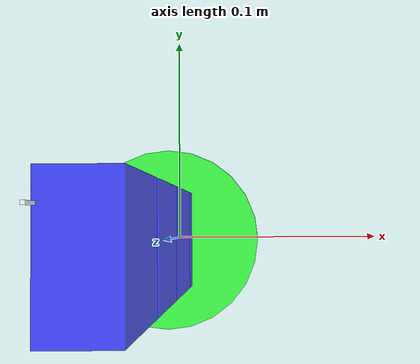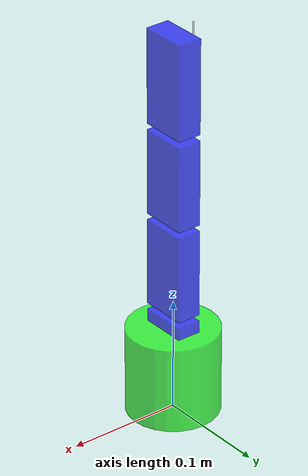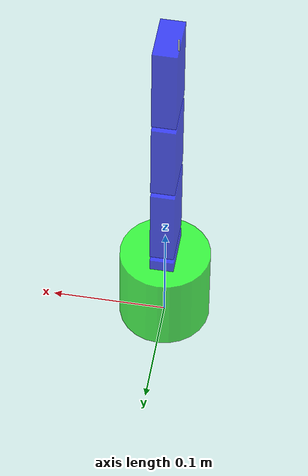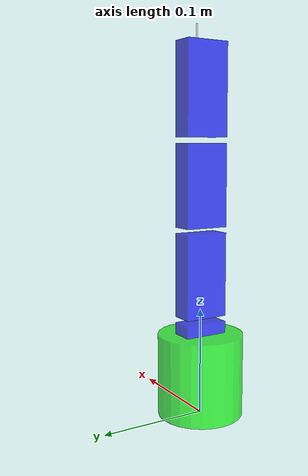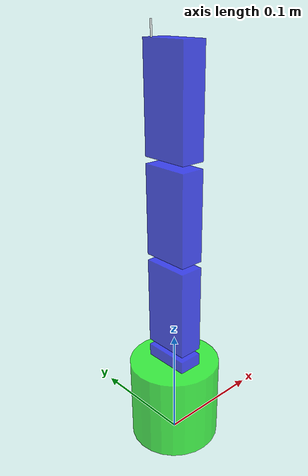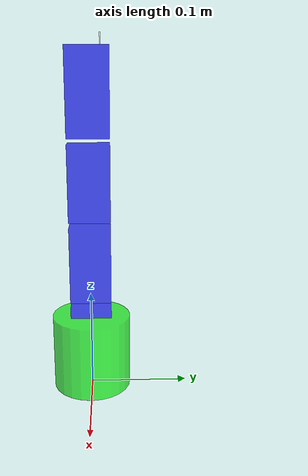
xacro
<?xml version="1.0"?>
<robot xmlns:xacro="http://www.ros.org/wiki/xacro" name="robot">
    <xacro:arg name="initial_positions_file" default="initial_positions.yaml" />

    <!-- Import robot urdf file -->
    <xacro:include filename="$(find arm_description)/description/bot.urdf.xacro" />

    <!-- Import control_xacro -->
    <xacro:include filename="robot.ros2_control.xacro" />

    <xacro:robot_ros2_control name="FakeSystem" initial_positions_file="$(arg initial_positions_file)"/>

</robot>

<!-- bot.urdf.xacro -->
<robot xmlns:xacro="http://www.ros.org/wiki/xacro"  name="robot">

    <xacro:include filename="arm.xacro" />

    <xacro:include filename="gazebo_control.xacro" />

</robot>

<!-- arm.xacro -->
<robot xmlns:xacro="http://www.ros.org/wiki/xacro">

    <xacro:include filename="inertial_macros.xacro"/>

    <material name="white">
        <color rgba="1 1 1 0.7"/>
    </material>

    <material name="orange">
        <color rgba="1 0.5 0 0.7"/>
    </material>

    <material name="blue">
        <color rgba="0 0 1 0.7"/>
    </material>

    <material name="green">
        <color rgba="0 1 0 0.7"/>
    </material>

    <material name="black">
        <color rgba="0 0 0 0.7"/>
    </material>

    <material name="red">
        <color rgba="1 0 0 0.7"/>
    </material>

    <!-- BASE LINK -->

    <link name="base_link">
    </link>

    <!-- base footprint -->

    <joint name="base_footprint_joint" type="fixed">
        <parent link="base_link"/>
        <child link="base_footprint"/>
        <origin xyz="0 0 0" rpy="0 0 0" />
    </joint>

    <link name="base_footprint">
    </link>

    <!-- base cylinder -->
    <joint name="base_cylinder_joint" type="fixed">
        <parent link="base_link"/>
        <child link="base_cylinder"/>
        <origin xyz="0 0 0.104" rpy="0 0 0" />
    </joint>

    <link name="base_cylinder">
        <visual>
            <origin xyz="0 0 -0.0655" rpy="0 0 0" />
            <geometry>
                <cylinder radius="0.040" length="0.077"/>
            </geometry>
            <material name="green"/>
        </visual>

        <collision>
            <origin xyz="0 0 -0.0655" rpy="0 0 0" />
            <geometry>
                <cylinder radius="0.040" length="0.077"/>
            </geometry>
        </collision>
        <xacro:inertial_cylinder mass="50" radius="0.040" length="0.077" >
            <origin xyz="0 0 -0.0655" />
        </xacro:inertial_cylinder>
    </link>

    <gazebo reference="base_cylinder">
        <material>Gazebo/Green</material>
    </gazebo>

    <!-- link 1 -->

    <joint name="link_1_joint" type="revolute">
        <parent link="base_cylinder"/>
        <child link="link_1"/>
        <origin xyz="0 0 0" rpy="0 0 0" />
        <axis xyz="0 0 1"/>
        <limit lower="-${pi/2}" upper="${pi/2}" effort="100" velocity="1"/>
    </joint>

    <link name="link_1">
        <visual>
            <origin xyz="0 0 -0.0215" rpy="0 0 0" />
            <geometry>
                <box size="0.021 0.0415 0.011"/>
            </geometry>
            <material name="blue"/>
        </visual>
        <collision>
            <origin xyz="0 0 -0.0215" rpy="0 0 0" />
            <geometry>
                <box size="0.021 0.0415 0.011"/>
            </geometry>
        </collision>
        <xacro:inertial_box mass="0.05" x="0.021" y="0.0415" z="0.011" >
            <origin xyz="0 0 -0.0215" />
        </xacro:inertial_box>
    </link>

    <gazebo reference="link_1">
        <material>Gazebo/Blue</material>
    </gazebo>

    <!-- link 2 -->

    <joint name="link_2_joint" type="revolute">
        <parent link="link_1"/>
        <child link="link_2"/>
        <origin xyz="0 0 0" rpy="${pi/2} -${pi/2} 0" />
        <axis xyz="0 0 1"/>
        <limit lower="-${pi/2}" upper="${pi/2}" effort="100" velocity="1"/>
    </joint>

    <link name="link_2">
        <visual>
            <origin xyz="0.02875 0 0" rpy="${pi/2} 0 -${pi/2}" />
            <geometry>
                <box size="0.021 0.0415 0.0785"/>
            </geometry>
            <material name="blue"/>
        </visual>
        <collision>
            <origin xyz="0.02875 0 0" rpy="${pi/2} 0 -${pi/2}" />
            <geometry>
                <box size="0.021 0.0415 0.0785"/>
            </geometry>
        </collision>
        <xacro:inertial_box mass="0.05" x="0.021" y="0.0415" z="0.0785" >
            <origin xyz="0.02875 0 0" rpy="${pi/2} 0 -${pi/2}" />
        </xacro:inertial_box>
    </link>

    <gazebo reference="link_2">
        <material>Gazebo/Blue</material>
    </gazebo>

    <!-- link 3 -->

    <joint name="link_3_joint" type="revolute">
        <parent link="link_2"/>
        <child link="link_3"/>
        <origin xyz="0.084 0 0." rpy="0 0 0" />
        <axis xyz="0 0 1"/>
        <limit lower="-${pi/2}" upper="${pi/2}" effort="100" velocity="1"/>
    </joint>

    <link name="link_3">
        <visual>
            <origin xyz="0.02775 0 0" rpy="${pi/2} 0 -${pi/2}" />
            <geometry>
                <box size="0.021 0.0415 0.0765"/>
            </geometry>
            <material name="blue"/>
        </visual>
        <collision>
            <origin xyz="0.02775 0 0" rpy="${pi/2} 0 -${pi/2}" />
            <geometry>
                <box size="0.021 0.0415 0.0765"/>
            </geometry>
        </collision>
        <xacro:inertial_box mass="0.05" x="0.021" y="0.0415" z="0.0765" >
            <origin xyz="0.02775 0 0" rpy="${pi/2} 0 -${pi/2}" />
        </xacro:inertial_box>
    </link>

    <gazebo reference="link_3">
        <material>Gazebo/Blue</material>
    </gazebo>

    <!-- link 4 -->

    <joint name="link_4_joint" type="revolute">
        <parent link="link_3"/>
        <child link="link_4"/>
        <origin xyz="0.082 0 0" rpy="0 0 0" />
        <axis xyz="0 0 1"/>
        <limit lower="-${pi/2}" upper="${pi/2}" effort="100" velocity="1"/>
    </joint>

    <link name="link_4">
        <visual>
            <origin xyz="0.03175 0 0" rpy="${pi/2} 0 -${pi/2}" />
            <geometry>
                <box size="0.021 0.0415 0.0845"/>
            </geometry>
            <material name="blue"/>
        </visual>
        <collision>
            <origin xyz="0.03175 0 0" rpy="${pi/2} 0 -${pi/2}" />
            <geometry>
                <box size="0.021 0.0415 0.0845"/>
            </geometry>
        </collision>
        <xacro:inertial_box mass="0.05" x="0.021" y="0.0415" z="0.0845" >
            <origin xyz="0.03175 0 0" rpy="${pi/2} 0 -${pi/2}" />
        </xacro:inertial_box>
    </link>

    <gazebo reference="link_4">
        <material>Gazebo/Blue</material>
    </gazebo>

    <!-- EEpin -->

    <joint name="ee_pin_joint" type="fixed">
        <parent link="link_4"/>
        <child link="ee_pin"/>
        <origin xyz="0.086 0.010 -0.012" rpy="-${pi/2}  0 -${pi/2}" />

    </joint>

    <link name="ee_pin">
        <visual>
            <origin xyz="0 0 -0.006" rpy="0 0 0" />
            <geometry>
                <box size="0.001 0.001 0.012"/>
            </geometry>
            <material name="white"/>
        </visual>
        <collision>
            <origin xyz="0 0 -0.006" rpy="0 0 0" />
            <geometry>
                <box size="0.001 0.001 0.012"/>
            </geometry>
        </collision>
        <xacro:inertial_box mass="0.001" x="0.001" y="0.001" z="0.012" >
            <origin xyz="0 0 -0.006" rpy="0 0 0" />
        </xacro:inertial_box>
    </link>
    <gazebo reference="ee_pin">
        <material>Gazebo/White</material>
    </gazebo>

    <!-- left-finger -->

    <!-- right-finger -->

</robot>
